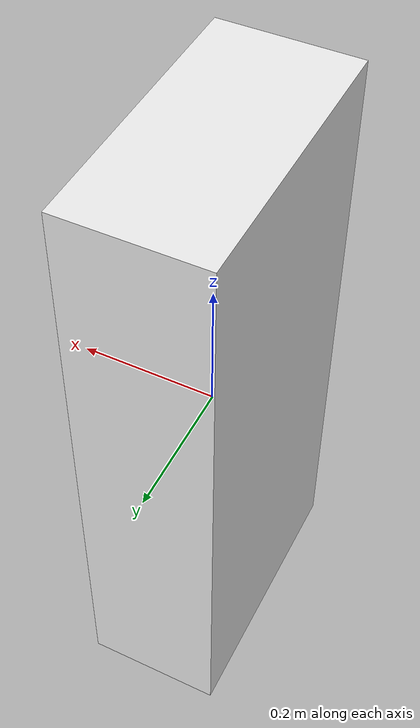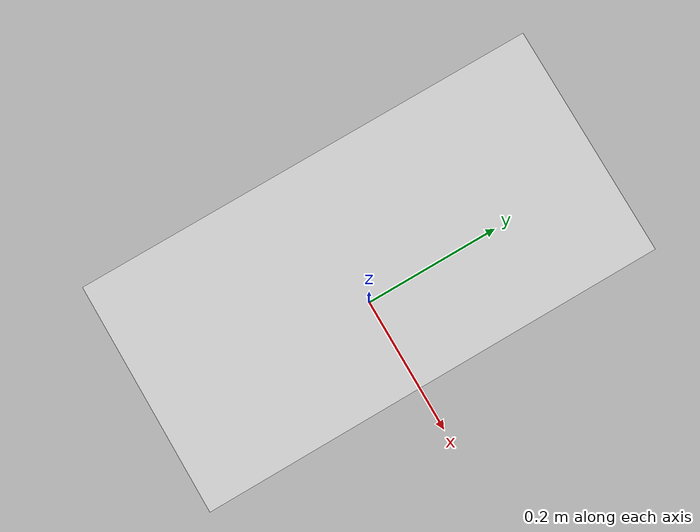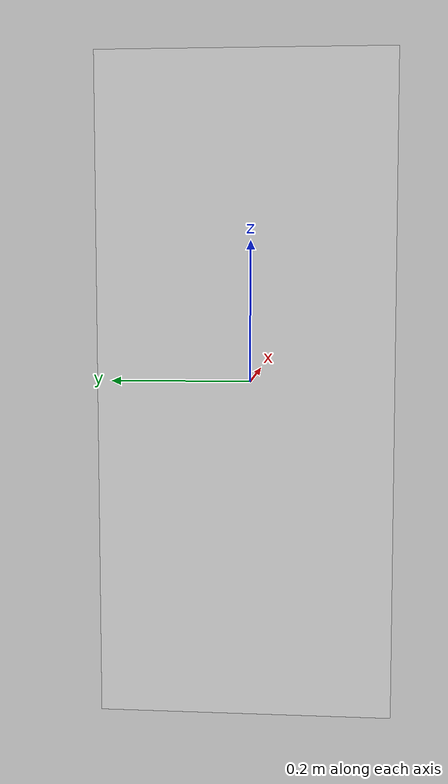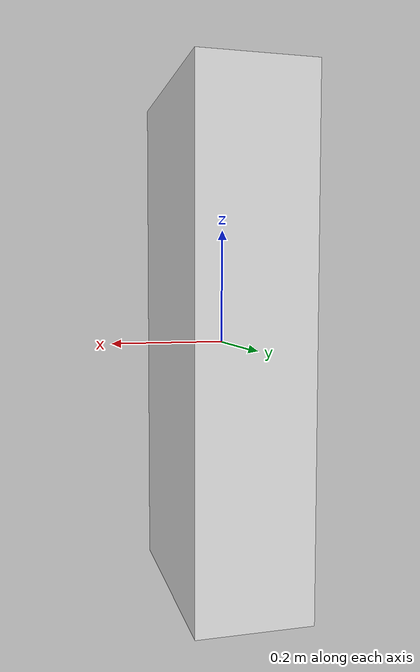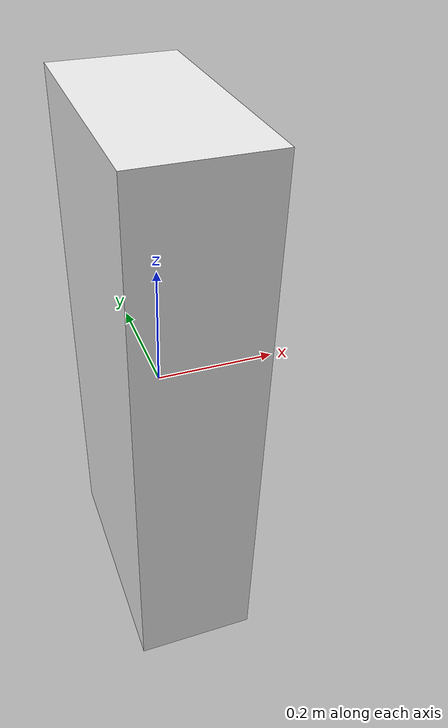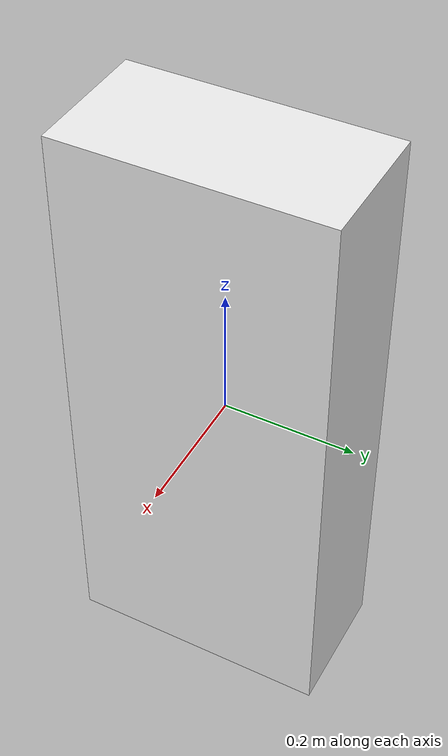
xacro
<?xml version="1.0"?>
<robot xmlns:xacro="http://www.ros.org/wiki/xacro" name="simple_table">
    <link name="object_base_link">
    </link>

    <joint name="object_base_joint" type="fixed">
        <parent link="object_base_link"/>
        <child link="object_link"/>
        <axis xyz="0 0 1" />
        <origin xyz="0 0 0" rpy="0 0 0"/>
    </joint>

    <link name="object_link">
        <inertial>
            <origin xyz="0 0 0" />
            <mass value="1000.0" />
            <inertia ixx="100.0" ixy="0.0" ixz="0.0" iyy="100.0" iyz="0.0" izz="100.0" />
        </inertial>
        <visual>
            <origin xyz="0 0 0"/>
            <geometry>
                <box size="0.2 0.4 0.9" />
            </geometry>
        </visual>
        <collision>
            <origin xyz="0 0 0"/>
            <geometry>
                <box size="0.2 0.4 0.9" />
            </geometry>
        </collision>
    </link>

    <gazebo reference="object_base_link">
        <gravity>1</gravity>
    </gazebo>

    <gazebo reference="object_link">
        <mu1>1</mu1>
        <mu2>1</mu2>
        <material>Gazebo/White</material>
    </gazebo>
</robot>
